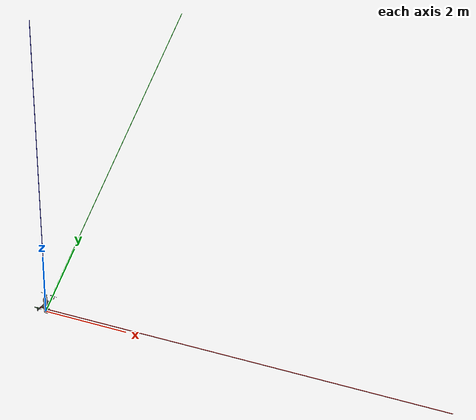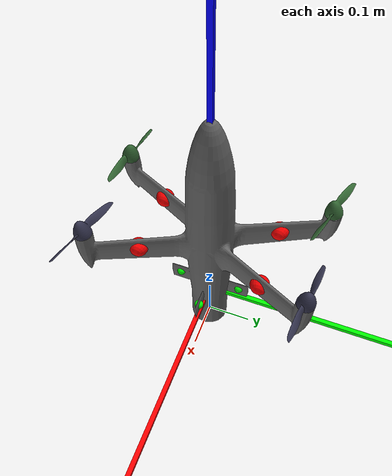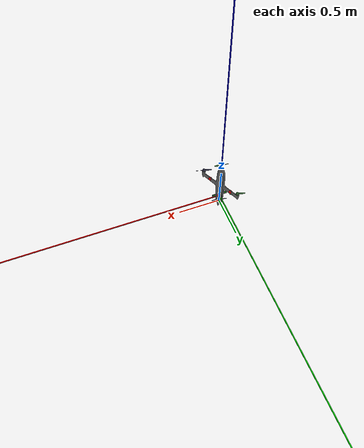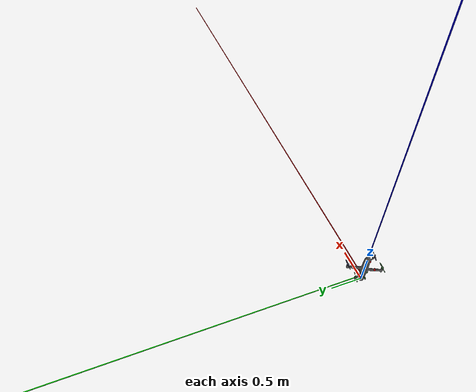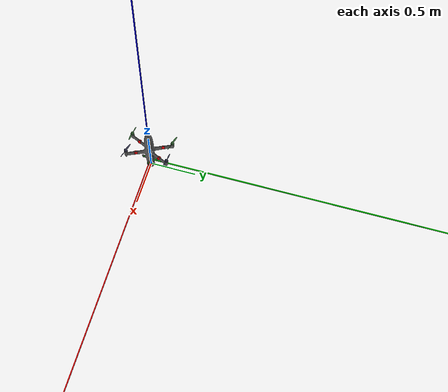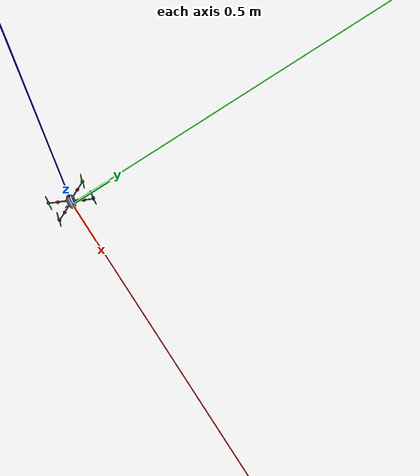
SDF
<sdf version="1.9">
 <world name="waterdrop_runway">
  <physics name="1ms" type="ignore">
   <max_step_size>0.001</max_step_size>
   <real_time_factor>1.0</real_time_factor>
  </physics>
  <plugin filename="gz-sim-physics-system" name="gz::sim::systems::Physics"/>
  <plugin filename="gz-sim-sensors-system" name="gz::sim::systems::Sensors">
   <render_engine>ogre2</render_engine>
  </plugin>
  <plugin filename="gz-sim-user-commands-system" name="gz::sim::systems::UserCommands"/>
  <plugin filename="gz-sim-scene-broadcaster-system" name="gz::sim::systems::SceneBroadcaster"/>
  <plugin filename="gz-sim-air-pressure-system" name="gz::sim::systems::AirPressure"/>
  <plugin filename="gz-sim-air-speed-system" name="gz::sim::systems::AirSpeed"/>
  <plugin filename="gz-sim-altimeter-system" name="gz::sim::systems::Altimeter"/>
  <plugin filename="gz-sim-imu-system" name="gz::sim::systems::Imu"/>
  <plugin filename="gz-sim-magnetometer-system" name="gz::sim::systems::Magnetometer"/>
  <plugin filename="gz-sim-navsat-system" name="gz::sim::systems::NavSat"/>
  <scene><ambient>1.0 1.0 1.0</ambient><background>0.8 0.8 0.8</background></scene>
  <spherical_coordinates>
   <latitude_deg>-35.3632621</latitude_deg>
   <longitude_deg>149.1652374</longitude_deg>
   <elevation>584</elevation>
   <heading_deg>0</heading_deg>
   <surface_model>EARTH_WGS84</surface_model>
  </spherical_coordinates>
  <light type="directional" name="sun">
   <pose>0 0 10 0 0 0</pose>
   <diffuse>0.8 0.8 0.8 1</diffuse>
   <specular>0.8 0.8 0.8 1</specular>
   <attenuation>
    <range>1000</range>
    <constant>0.9</constant>
    <linear>0.01</linear>
    <quadratic>0.001</quadratic>
   </attenuation>
   <direction>-0.5 0.1 -0.9</direction>
  </light>
  <model name="axes">
   <static>1</static>
   <link name="link">
    <visual name="r">
     <cast_shadows>0</cast_shadows>
     <pose>5 0 0.1 0 0 0</pose>
     <geometry><box><size>10 0.01 0.01</size></box></geometry>
     <material>
      <ambient>1 0 0 1</ambient>
      <diffuse>1 0 0 1</diffuse>
      <emissive>1 0 0 1</emissive>
      <specular>0.5 0.5 0.5 1</specular>
     </material>
    </visual>
    <visual name="g">
     <cast_shadows>0</cast_shadows>
     <pose>0 5 0.1 0 0 0</pose>
     <geometry><box><size>0.01 10 0.01</size></box></geometry>
     <material>
      <ambient>0 1 0 1</ambient>
      <diffuse>0 1 0 1</diffuse>
      <emissive>0 1 0 1</emissive>
      <specular>0.5 0.5 0.5 1</specular>
     </material>
    </visual>
    <visual name="b">
     <cast_shadows>0</cast_shadows>
     <pose>0 0 5.1 0 0 0</pose>
     <geometry><box><size>0.01 0.01 10</size></box></geometry>
     <material>
      <ambient>0 0 1 1</ambient>
      <diffuse>0 0 1 1</diffuse>
      <emissive>0 0 1 1</emissive>
      <specular>0.5 0.5 0.5 1</specular>
     </material>
    </visual>
   </link>
  </model>
  <include>
   <pose degrees="true">0 0 0.3 0 -90 0</pose>
   <uri>file:///home/alan/uav_sim_workspace/ardupilot_gazebo/models/waterdrop</uri>
  </include>
 </world>
</sdf>

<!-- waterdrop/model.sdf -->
<sdf version="1.9">
  <model name="waterdrop">
    <pose>0 0 0 0 0 0</pose>
    <static>0</static>

    <link name="base_link">
      <pose degrees="true">0 0 0 0 0 0</pose>
      <!-- \todo provide proper inertial : actual mass 4.3 kg -->
      <inertial>
        <pose>0 0 0 0 0 0</pose>
        <mass>4.3</mass>
        <inertia>
          <ixx>0.049</ixx>
          <ixy>0</ixy>
          <ixz>0</ixz>
          <iyy>0.082</iyy>
          <iyz>0</iyz>
          <izz>0.058</izz>
        </inertia>
      </inertial>
      <collision name="collision">
        <geometry>
          <mesh>
            <uri>model://waterdrop/meshes/base_link.STL</uri>
          </mesh>
        </geometry>
      </collision>
      <visual name="fuselage_visual">
        <geometry>
          <mesh>
            <uri>model://waterdrop/meshes/base_link.STL</uri>
          </mesh>
        </geometry>
        <material>
          <ambient>0.4 0.4 0.4</ambient>
          <diffuse>0.4 0.4 0.4</diffuse>
          <specular>0.3 0.3 0.3 1</specular>
        </material>
      </visual>

      <visual name="cp_wing_1">
        <pose>-0.01 -0.13 -0.07 0 0 0</pose>
        <geometry>
          <sphere>
            <radius>0.02</radius>
          </sphere>
        </geometry>
        <material>
          <ambient>1 0 0</ambient>
          <diffuse>1 0 0</diffuse>
          <specular>0.1 0.1 0.1 1</specular>
        </material>
      </visual>
      <visual name="cp_wing_2">
        <pose>-0.01 0.13 0.07 0 0 0</pose>
        <geometry>
          <sphere>
            <radius>0.02</radius>
          </sphere>
        </geometry>
        <material>
          <ambient>1 0 0</ambient>
          <diffuse>1 0 0</diffuse>
          <specular>0.1 0.1 0.1 1</specular>
        </material>
      </visual>
      <visual name="cp_wing_3">
        <pose>-0.01 0.13 -0.07 0 0 0</pose>
        <geometry>
          <sphere>
            <radius>0.02</radius>
          </sphere>
        </geometry>
        <material>
          <ambient>1 0 0</ambient>
          <diffuse>1 0 0</diffuse>
          <specular>0.1 0.1 0.1 1</specular>
        </material>
      </visual>
      <visual name="cp_wing_4">
        <pose>-0.01 -0.13 0.07 0 0 0</pose>
        <geometry>
          <sphere>
            <radius>0.02</radius>
          </sphere>
        </geometry>
        <material>
          <ambient>1 0 0</ambient>
          <diffuse>1 0 0</diffuse>
          <specular>0.1 0.1 0.1 1</specular>
        </material>
      </visual>
      <visual name="cp_vertail_1">
        <pose>-0.17 -0.07 0 0 0 0</pose>
        <geometry>
          <sphere>
            <radius>0.01</radius>
          </sphere>
        </geometry>
        <material>
          <ambient>0 1 0</ambient>
          <diffuse>0 1 0</diffuse>
          <specular>0.1 0.1 0.1 1</specular>
        </material>
      </visual>
      <visual name="cp_vertail_2">
        <pose>-0.17 0.07 0 0 0 0</pose>
        <geometry>
          <sphere>
            <radius>0.01</radius>
          </sphere>
        </geometry>
        <material>
          <ambient>0 1 0</ambient>
          <diffuse>0 1 0</diffuse>
          <specular>0.1 0.1 0.1 1</specular>
        </material>
      </visual>
      <visual name="cp_vertail_3">
        <pose>-0.17 0 -0.07 0 0 0</pose>
        <geometry>
          <sphere>
            <radius>0.01</radius>
          </sphere>
        </geometry>
        <material>
          <ambient>0 1 0</ambient>
          <diffuse>0 1 0</diffuse>
          <specular>0.1 0.1 0.1 1</specular>
        </material>
      </visual>
      <visual name="cp_vertail_4">
        <pose>-0.17 0 0.07 0 0 0</pose>
        <geometry>
          <sphere>
            <radius>0.01</radius>
          </sphere>
        </geometry>
        <material>
          <ambient>0 1 0</ambient>
          <diffuse>0 1 0</diffuse>
          <specular>0.1 0.1 0.1 1</specular>
        </material>
      </visual>

      <collision name="leg1_collision">
        <pose>-0.26 -0.25 -0.16 0 0 0</pose>
        <geometry>
          <sphere>
            <radius>0.01</radius>
          </sphere>
        </geometry>
      </collision>
      <collision name="leg2_collision">
        <pose>-0.26 0.25 0.16 0 0 0</pose>
        <geometry>
          <sphere>
            <radius>0.01</radius>
          </sphere>
        </geometry>
      </collision>
      <collision name="leg3_collision">
        <pose>-0.26 0.25 -0.16 0 0 0</pose>
        <geometry>
          <sphere>
            <radius>0.01</radius>
          </sphere>
        </geometry>
      </collision>
      <collision name="leg4_collision">
        <pose>-0.26 -0.25 0.16 0 0 0</pose>
        <geometry>
          <sphere>
            <radius>0.01</radius>
          </sphere>
        </geometry>
      </collision>
    </link>

    <!-- CCW -->
    <joint name='motor1_joint' type='revolute'>
      <pose relative_to="base_link" degrees="true">0.042836 -0.22635 -0.11141 0 90 0</pose>
      <child>motor1_link</child>
      <parent>base_link</parent>
      <axis>
        <xyz>0 0 1</xyz>
        <limit>
          <lower>-1e+16</lower>
          <upper>1e+16</upper>
        </limit>
        <dynamics>
          <damping>1e-5</damping>
        </dynamics>
      </axis>
    </joint>
    <link name="motor1_link">
      <pose relative_to="motor1_joint">0 0 0 0 0 0</pose>
      <inertial>
        <pose>0 0 0 0 0 0</pose>
        <mass>0.025</mass>
        <inertia>
          <ixx>0.000130417</ixx>
          <ixy>0</ixy>
          <ixz>0</ixz>
          <iyy>0.000130417</iyy>
          <iyz>0</iyz>
          <izz>0.000260417</izz>
        </inertia>
      </inertial>
      <collision name='link_1_collision'>
        <pose>0 0 0 0 0 0</pose>
        <geometry>
          <mesh>
            <scale>1 1 1</scale>
            <uri>model://waterdrop/meshes/ccw_rotor.STL</uri>
          </mesh>
        </geometry>
      </collision>
      <visual name='link_1_visual'>
        <pose>0 0 0 0 0 0</pose>
        <geometry>
          <mesh>
            <scale>1 1 1</scale>
            <uri>model://waterdrop/meshes/ccw_rotor.STL</uri>
          </mesh>
        </geometry>
        <material>
          <ambient>0.2 0.2 0.3</ambient>
          <diffuse>0.2 0.2 0.3</diffuse>
          <specular>0.1 0.1 0.1 1</specular>
        </material>
      </visual>
    </link>

    <!-- CCW -->
    <joint name='motor2_joint' type='revolute'>
      <pose relative_to="base_link" degrees="true">0.042836 0.22635 0.11141 0 90 0</pose>
      <child>motor2_link</child>
      <parent>base_link</parent>
      <axis>
        <xyz>0 0 1</xyz>
        <limit>
          <lower>-1e+16</lower>
          <upper>1e+16</upper>
        </limit>
        <dynamics>
          <damping>1e-5</damping>
        </dynamics>
      </axis>
    </joint>
    <link name="motor2_link">
      <pose relative_to="motor2_joint">0 0 0 0 0 0</pose>
      <inertial>
        <pose>0 0 0 0 0 0</pose>
        <mass>0.025</mass>
        <inertia>
          <ixx>0.000130417</ixx>
          <ixy>0</ixy>
          <ixz>0</ixz>
          <iyy>0.000130417</iyy>
          <iyz>0</iyz>
          <izz>0.000260417</izz>
        </inertia>
      </inertial>
      <collision name='link_2_collision'>
        <pose degrees="true">0 0 0 0 0 0</pose>
        <geometry>
          <mesh>
            <scale>1 1 1</scale>
            <uri>model://waterdrop/meshes/ccw_rotor.STL</uri>
          </mesh>
        </geometry>
      </collision>
      <visual name='link_2_visual'>
        <pose degrees="true">0 0 0 0 0 0</pose>
        <geometry>
          <mesh>
            <scale>1 1 1</scale>
            <uri>model://waterdrop/meshes/ccw_rotor.STL</uri>
          </mesh>
        </geometry>
        <material>
          <ambient>0.2 0.4 0.2</ambient>
          <diffuse>0.2 0.4 0.2</diffuse>
          <specular>0.1 0.1 0.1 1</specular>
        </material>
      </visual>
    </link>

    <!-- CW -->
    <joint name='motor3_joint' type='revolute'>
      <pose relative_to="base_link" degrees="true">0.042836 0.22635 -0.11141 0 90 0</pose>
      <child>motor3_link</child>
      <parent>base_link</parent>
      <axis>
        <xyz>0 0 1</xyz>
        <limit>
          <lower>-1e+16</lower>
          <upper>1e+16</upper>
        </limit>
        <dynamics>
          <damping>1e-5</damping>
        </dynamics>
      </axis>
    </joint>
    <link name="motor3_link">
      <pose relative_to="motor3_joint">0 0 0 0 0 0</pose>
      <inertial>
        <pose>0 0 0 0 0 0</pose>
        <mass>0.025</mass>
        <inertia>
          <ixx>0.000130417</ixx>
          <ixy>0</ixy>
          <ixz>0</ixz>
          <iyy>0.000130417</iyy>
          <iyz>0</iyz>
          <izz>0.000260417</izz>
        </inertia>
      </inertial>
      <collision name='link_3_collision'>
        <pose degrees="true">0 0 0 0 180 0</pose>
        <geometry>
          <mesh>
            <scale>1 1 1</scale>
            <uri>model://waterdrop/meshes/cw_rotor.STL</uri>
          </mesh>
        </geometry>
      </collision>
      <visual name='link_3_visual'>
        <pose degrees="true">0 0 0 0 180 0</pose>
        <geometry>
          <mesh>
            <scale>1 1 1</scale>
            <uri>model://waterdrop/meshes/cw_rotor.STL</uri>
          </mesh>
        </geometry>
        <material>
          <ambient>0.2 0.2 0.3</ambient>
          <diffuse>0.2 0.2 0.3</diffuse>
          <specular>0.1 0.1 0.1 1</specular>
        </material>
      </visual>
    </link>

    <!-- CW -->
    <joint name='motor4_joint' type='revolute'>
      <pose relative_to="base_link" degrees="true">0.042836 -0.22635 0.11141 0 90 0</pose>
      <child>motor4_link</child>
      <parent>base_link</parent>
      <axis>
        <xyz>0 0 1</xyz>
        <limit>
          <lower>-1e+16</lower>
          <upper>1e+16</upper>
        </limit>
        <dynamics>
          <damping>1e-5</damping>
        </dynamics>
      </axis>
    </joint>
    <link name="motor4_link">
      <pose relative_to="motor4_joint">0 0 0 0 0 0</pose>
      <inertial>
        <pose>0 0 0 0 0 0</pose>
        <mass>0.025</mass>
        <inertia>
          <ixx>0.000130417</ixx>
          <ixy>0</ixy>
          <ixz>0</ixz>
          <iyy>0.000130417</iyy>
          <iyz>0</iyz>
          <izz>0.000260417</izz>
        </inertia>
      </inertial>
      <collision name='link_4_collision'>
        <pose degrees="true">0 0 0 0 180 0</pose>
        <geometry>
          <mesh>
            <scale>1 1 1</scale>
            <uri>model://waterdrop/meshes/cw_rotor.STL</uri>
          </mesh>
        </geometry>
      </collision>
      <visual name='link_4_visual'>
        <pose degrees="true">0 0 0 0 180 0</pose>
        <geometry>
          <mesh>
            <scale>1 1 1</scale>
            <uri>model://waterdrop/meshes/cw_rotor.STL</uri>
          </mesh>
        </geometry>
        <material>
          <ambient>0.2 0.4 0.2</ambient>
          <diffuse>0.2 0.4 0.2</diffuse>
          <specular>0.1 0.1 0.1 1</specular>
        </material>
      </visual>
    </link>

    <!-- sensors -->
    <link name='imu_link'>
      <inertial>
        <pose>0 0 0 0 0 0</pose>
        <mass>0.15</mass>
        <inertia>
          <ixx>0.00002</ixx>
          <ixy>0</ixy>
          <ixz>0</ixz>
          <iyy>0.00002</iyy>
          <iyz>0</iyz>
          <izz>0.00002</izz>
        </inertia>
      </inertial>
      <sensor name="imu_sensor" type="imu">
        <pose degrees="true">0 0 0 180 0 0</pose>
        <always_on>1</always_on>
        <update_rate>1000.0</update_rate>
      </sensor>
    </link>
    <joint name='imu_joint' type='fixed'>
      <child>imu_link</child>
      <parent>base_link</parent>
      <axis>
        <xyz>0 0 1</xyz>
      </axis>
    </joint>

    <!-- plugins -->
    <plugin filename="gz-sim-joint-state-publisher-system"
      name="gz::sim::systems::JointStatePublisher">
    </plugin>
    <plugin filename="gz-sim-apply-joint-force-system"
      name="gz::sim::systems::ApplyJointForce">
      <joint_name>motor1_joint</joint_name>
    </plugin>
    <plugin filename="gz-sim-apply-joint-force-system"
      name="gz::sim::systems::ApplyJointForce">
      <joint_name>motor2_joint</joint_name>
    </plugin>
    <plugin filename="gz-sim-apply-joint-force-system"
      name="gz::sim::systems::ApplyJointForce">
      <joint_name>motor3_joint</joint_name>
    </plugin>
    <plugin filename="gz-sim-apply-joint-force-system"
      name="gz::sim::systems::ApplyJointForce">
      <joint_name>motor4_joint</joint_name>
    </plugin>

    <!-- prop1 (ccw) data-driven performance -->
    <plugin filename="PropellerPerformancePlugin"
        name="PropellerPerformancePlugin">
      <link_name>motor1_link</link_name>
      <joint_name>motor1_joint</joint_name>
      <performance_file>model://waterdrop/propellers/PER3_7x11E.csv</performance_file>
      <cw>false</cw>
    </plugin>

    <!-- prop2 (ccw) data-driven performance -->
    <plugin filename="PropellerPerformancePlugin"
        name="PropellerPerformancePlugin">
      <link_name>motor2_link</link_name>
      <joint_name>motor2_joint</joint_name>
      <performance_file>model://waterdrop/propellers/PER3_7x11E.csv</performance_file>
      <cw>false</cw>
    </plugin>

    <!-- prop3 (cw) data-driven performance -->
    <plugin filename="PropellerPerformancePlugin"
        name="PropellerPerformancePlugin">
      <link_name>motor3_link</link_name>
      <joint_name>motor3_joint</joint_name>
      <performance_file>model://waterdrop/propellers/PER3_7x11E.csv</performance_file>
      <cw>true</cw>
    </plugin>

    <!-- prop4 (cw) data-driven performance -->
    <plugin filename="PropellerPerformancePlugin"
        name="PropellerPerformancePlugin">
      <link_name>motor4_link</link_name>
      <joint_name>motor4_joint</joint_name>
      <performance_file>model://waterdrop/propellers/PER3_7x11E.csv</performance_file>
      <cw>true</cw>
    </plugin>

    <!-- wing_1 lift and drag -->
    <plugin filename="gz-sim-lift-drag-system"
        name="gz::sim::systems::LiftDrag">
      <a0>0.0</a0>
      <cla>4.752798721</cla>
      <cda>0.6417112299</cda>
      <cma>0.0</cma>
      <alpha_stall>0.3391428111</alpha_stall>
      <cla_stall>-3.85</cla_stall>
      <cda_stall>-0.9233984055</cda_stall>
      <cma_stall>0.0</cma_stall>
      <cp>-0.01 -0.13 -0.07</cp>
      <area>0.0155</area>
      <air_density>1.2041</air_density>
      <forward>1 0 0</forward>
      <upward>0 0.4226 -0.9063</upward>
      <link_name>base_link</link_name>
    </plugin>
    <!-- wing_2 lift and drag -->
    <plugin filename="gz-sim-lift-drag-system"
        name="gz::sim::systems::LiftDrag">
      <a0>0.0</a0>
      <cla>4.752798721</cla>
      <cda>0.6417112299</cda>
      <cma>0.0</cma>
      <alpha_stall>0.3391428111</alpha_stall>
      <cla_stall>-3.85</cla_stall>
      <cda_stall>-0.9233984055</cda_stall>
      <cma_stall>0.0</cma_stall>
      <cp>-0.01 0.13 0.07</cp>
      <area>0.0155</area>
      <air_density>1.2041</air_density>
      <forward>1 0 0</forward>
      <upward>0 0.4226 -0.9063</upward>
      <link_name>base_link</link_name>
    </plugin>
    <!-- wing_3 lift and drag -->
    <plugin filename="gz-sim-lift-drag-system"
        name="gz::sim::systems::LiftDrag">
      <a0>0.0</a0>
      <cla>4.752798721</cla>
      <cda>0.6417112299</cda>
      <cma>0.0</cma>
      <alpha_stall>0.3391428111</alpha_stall>
      <cla_stall>-3.85</cla_stall>
      <cda_stall>-0.9233984055</cda_stall>
      <cma_stall>0.0</cma_stall>
      <cp>-0.01 0.13 -0.07</cp>
      <area>0.0155</area>
      <air_density>1.2041</air_density>
      <forward>1 0 0</forward>
      <upward>0 -0.4226 -0.9063</upward>
      <link_name>base_link</link_name>
    </plugin>
    <!-- wing_4 lift and drag -->
    <plugin filename="gz-sim-lift-drag-system"
        name="gz::sim::systems::LiftDrag">
      <a0>0.0</a0>
      <cla>4.752798721</cla>
      <cda>0.6417112299</cda>
      <cma>0.0</cma>
      <alpha_stall>0.3391428111</alpha_stall>
      <cla_stall>-3.85</cla_stall>
      <cda_stall>-0.9233984055</cda_stall>
      <cma_stall>0.0</cma_stall>
      <cp>-0.01 -0.13 0.07</cp>
      <area>0.0155</area>
      <air_density>1.2041</air_density>
      <forward>1 0 0</forward>
      <upward>0 -0.4226 -0.9063</upward>
      <link_name>base_link</link_name>
    </plugin>

    <plugin name="ArduPilotPlugin" filename="ArduPilotPlugin">
      <fdm_addr>127.0.0.1</fdm_addr>
      <fdm_port_in>9002</fdm_port_in>
      <connectionTimeoutMaxCount>5</connectionTimeoutMaxCount>
      <lock_step>1</lock_step>
      <modelXYZToAirplaneXForwardZDown degrees="true">0 0 0 180 0 0</modelXYZToAirplaneXForwardZDown>
      <gazeboXYZToNED degrees="true">0 0 0 180 0 90</gazeboXYZToNED>
      <imuName>imu_sensor</imuName>
      <!--
          SERVO1_FUNCTION   33 (Motor1 Front Right CCW)
          SERVO1_MAX        2000
          SERVO1_MIN        1000
          SERVO1_REVERSED   0
          SERVO1_TRIM       1500
       -->
      <control channel="0">
        <jointName>motor1_joint</jointName>
        <useForce>1</useForce>
        <multiplier>2100</multiplier>
        <offset>0</offset>
        <servo_min>1000</servo_min>
        <servo_max>2000</servo_max>
        <type>VELOCITY</type>
        <p_gain>0.05</p_gain>
        <i_gain>0.02</i_gain>
        <d_gain>0</d_gain>
        <i_max>2.5</i_max>
        <i_min>-2.5</i_min>
        <cmd_max>2.5</cmd_max>
        <cmd_min>-2.5</cmd_min>
      </control>

      <!--
          SERVO2_FUNCTION   34 (Motor2 Back Left CCW)
          SERVO2_MAX        2000
          SERVO2_MIN        1000
          SERVO2_REVERSED   0
          SERVO2_TRIM       1500
       -->
      <control channel="1">
        <jointName>motor2_joint</jointName>
        <useForce>1</useForce>
        <multiplier>2100</multiplier>
        <offset>0</offset>
        <servo_min>1000</servo_min>
        <servo_max>2000</servo_max>
        <type>VELOCITY</type>
        <p_gain>0.05</p_gain>
        <i_gain>0.02</i_gain>
        <d_gain>0</d_gain>
        <i_max>2.5</i_max>
        <i_min>-2.5</i_min>
        <cmd_max>2.5</cmd_max>
        <cmd_min>-2.5</cmd_min>
      </control>

      <!--
          SERVO3_FUNCTION   35 (Motor3 Front Left CW)
          SERVO3_MAX        2000
          SERVO3_MIN        1000
          SERVO3_REVERSED   0
          SERVO3_TRIM       1500
       -->
      <control channel="2">
        <jointName>motor3_joint</jointName>
        <useForce>1</useForce>
        <multiplier>-2100</multiplier>
        <offset>0</offset>
        <servo_min>1000</servo_min>
        <servo_max>2000</servo_max>
        <type>VELOCITY</type>
        <p_gain>0.05</p_gain>
        <i_gain>0.02</i_gain>
        <d_gain>0</d_gain>
        <i_max>2.5</i_max>
        <i_min>-2.5</i_min>
        <cmd_max>2.5</cmd_max>
        <cmd_min>-2.5</cmd_min>
      </control>

      <!--
          SERVO4_FUNCTION   36 (Motor4 Back Right CW)
          SERVO4_MAX        2000
          SERVO4_MIN        1000
          SERVO4_REVERSED   0
          SERVO4_TRIM       1500
       -->
      <control channel="3">
        <jointName>motor4_joint</jointName>
        <useForce>1</useForce>
        <multiplier>-2100</multiplier>
        <offset>0</offset>
        <servo_min>1000</servo_min>
        <servo_max>2000</servo_max>
        <type>VELOCITY</type>
        <p_gain>0.05</p_gain>
        <i_gain>0.02</i_gain>
        <d_gain>0</d_gain>
        <i_max>2.5</i_max>
        <i_min>-2.5</i_min>
        <cmd_max>2.5</cmd_max>
        <cmd_min>-2.5</cmd_min>
      </control>
    </plugin>
  </model>
</sdf>
